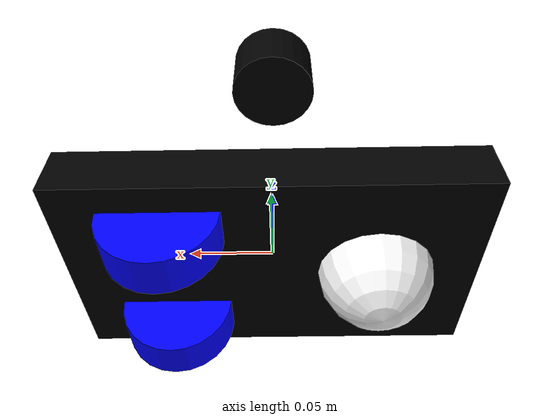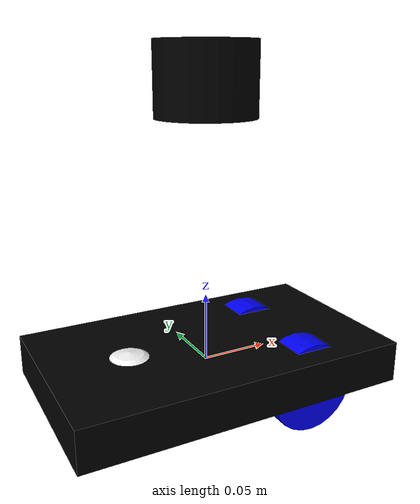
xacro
<?xml version="1.0"?>
<robot name="visual">

	<material name="blue">
		<color rgba="0 0 1 1"/>
	</material>
	<material name="black">
		<color rgba="0 0 0 1"/>
	</material>
	<material name="white">
		<color rgba="1 1 1 1"/>
	</material>

	<!-- Odom link (корень без инерции) -->
	<link name="odom"/>

	<!-- Основная платформа (с инерцией) -->
	<link name="base_link">
		<visual>
			<geometry>
				<box size="0.24 0.14 0.03"/>
			</geometry>
			<material name="black"/>
		</visual>
		<collision>
			<geometry>
				<box size="0.24 0.14 0.03"/>
			</geometry>
		</collision>
		<inertial>
			<mass value="25"/>
			<inertia ixx="0.126164" ixy="0" ixz="0"
			         iyy="0.416519" iyz="0" izz="0.481014"/>
		</inertial>
	</link>

	<link name="base_footprint">
	</link>

	<joint name="base_footprint_joint" type="fixed">
	  <parent link="base_link"/>
	  <child link="base_footprint"/>
	  <!-- Смещение (xyz) и ориентация (rpy) лидара относительно base_link -->
	  <origin xyz="0 0 0" rpy="0 0 0"/>
	</joint>

  <!--лидар -->
<link name="lidar_link">
  <visual>
    <geometry>
      <cylinder length="0.05" radius="0.035"/>
    </geometry>
    <material name="black">
      <color rgba="0 0 0 1"/>
    </material>
  </visual>
  <collision>
    <geometry>
      <cylinder length="0.05" radius="0.035"/>
    </geometry>
  </collision>
  <inertial>
    <mass value="0.1" />
    <origin xyz="0 0 0"/>
    <inertia ixx="0.001" ixy="0.0" ixz="0.0" iyy="0.001" iyz="0.0" izz="0.001" />
  </inertial>
</link>

<!-- Фиксированный шарнир между базой и лидаром -->
<joint name="lidar_joint" type="fixed">
  <parent link="base_link"/>
  <child link="lidar_link"/>
  <!-- Смещение (xyz) и ориентация (rpy) лидара относительно base_link -->
  <origin xyz="0 0 0.2" rpy="0 0 0"/>
</joint>

	<joint name="base_link_joint" type="fixed">
		<parent link="odom"/>
		<child link="base_link"/>
		<origin xyz="0 0 0" rpy="0 0 0"/>
	</joint>

	<!-- Промежуточное звено (left_base) -->
	<link name="left_base">
		<visual>
			<geometry>
				<box size="0.01 0.01 0.01"/>
			</geometry>
		</visual>
	</link>

	<joint name="left_base_joint" type="fixed">
		<parent link="base_link"/>
		<child link="left_base"/>
		<!-- Joint находится в позиции оси колеса -->
		<origin xyz="0.06 0.04 -0.015"/>
	</joint>

	<!-- Левое колесо -->
	<link name="left_wheel">
		<visual>
			<origin rpy="1.57075 0 0" xyz="0 0 0"/>
			<geometry>
				<cylinder length="0.025" radius="0.0335"/>
			</geometry>
			<material name="blue"/>
		</visual>
		<collision>
			<origin rpy="1.57075 0 0" xyz="0 0 0"/>
			<geometry>
				<cylinder length="0.025" radius="0.0335"/>
			</geometry>
		</collision>
		<inertial>
			<mass value="2.5"/>
			<inertia ixx="0.145833" ixy="0" ixz="0"
			         iyy="0.145833" iyz="0" izz="0.125"/>
		</inertial>
	</link>

	<joint name="left_wheel_joint" type="continuous">
		<axis xyz="0 1 0"/>
		<parent link="left_base"/>
		<child link="left_wheel"/>
		<!-- Колесо на нулевой позиции относительно промежуточного звена -->
		<origin xyz="0 0 0" rpy="0 0 0"/>
		<command_interface name="velocity"/><!-- управляем скорость колеса -->
		<state_interface name="position"/><!-- состояние: пройденный угол -->
		<state_interface name="velocity"/><!-- состояние: текущая скорость -->
	</joint>

  <link name="caster_wheel">
    <visual>
      <origin xyz="0 0 0" rpy="0 0 0"/>
      <geometry>
        <sphere radius="0.0335"/>
      </geometry>
      <material name="white"/>
    </visual>
    <collision>
      <origin xyz="0 0 0" rpy="0 0 0"/>
      <geometry>
        <sphere radius="0.0335"/>
      </geometry>
    </collision>
    <inertial>
      <mass value="6"/>
      <inertia ixx="1e-4" ixy="0" ixz="0"
               iyy="1e-3" iyz="0" izz="1e-3"/>
    </inertial>
  </link>
  <joint name="caster_wheel_joint" type="fixed">
    <parent link="base_link"/>
    <child link="caster_wheel"/>
    <origin xyz="-0.06 0 -0.015" rpy="0 0 0"/>
  </joint>

	<!-- Левое колесо -->

	<!-- Промежуточное звено (right_base) -->
	<link name="right_base">
		<visual>
			<geometry>
				<box size="0.01 0.01 0.01"/>
			</geometry>
		</visual>
	</link>

	<joint name="right_base_joint" type="fixed">
		<parent link="base_link"/>
		<child link="right_base"/>
		<!-- Joint находится в позиции оси колеса -->
		<origin xyz="0.06 -0.04 -0.015"/>
	</joint>

	<!-- Правое колесо -->
	<link name="right_wheel">
		<visual>
			<origin rpy="1.57075 0 0" xyz="0 0 0"/>
			<geometry>
				<cylinder length="0.025" radius="0.0335"/>
			</geometry>
			<material name="blue"/>
		</visual>
		<collision>
			<origin rpy="1.57075 0 0" xyz="0 0 0"/>
			<geometry>
				<cylinder length="0.025" radius="0.0335"/>
			</geometry>
		</collision>
		<inertial>
			<mass value="2.5"/>
			<inertia ixx="0.145833" ixy="0" ixz="0"
			         iyy="0.145833" iyz="0" izz="0.125"/>
		</inertial>
	</link>

	<joint name="right_wheel_joint" type="continuous">
		<axis xyz="0 1 0"/>
		<parent link="right_base"/>
		<child link="right_wheel"/>
		<!-- Колесо на нулевой позиции относительно промежуточного звена -->
		<origin xyz="0 0 0" rpy="0 0 0"/>
		<command_interface name="velocity"/><!-- управляем скорость колеса -->
		<state_interface name="position"/><!-- состояние: пройденный угол -->
		<state_interface name="velocity"/><!-- состояние: текущая скорость -->
	</joint>

	<ros2_control name="my_robot_hardware" type="system">
		<hardware>
			<!-- Подключаем эмуляцию аппаратной части: GenericSystem с вычислением динамики -->
			<plugin>mock_components/GenericSystem</plugin>
			 <param name="update_rate" type="int">50</param>
			<param name="calculate_dynamics" type="bool">true</param>
		</hardware>
		<!-- Описание управляемых шарниров -->
		<joint name="left_wheel_joint">
			<command_interface name="velocity"/><!-- управляем скорость колеса -->
			<state_interface name="position"/><!-- состояние: пройденный угол -->
			<state_interface name="velocity"/><!-- состояние: текущая скорость -->
		</joint>
		<joint name="right_wheel_joint">
			<command_interface name="velocity"/>
			<state_interface name="position"/>
			<state_interface name="velocity"/>
		</joint>
	</ros2_control>

</robot>
